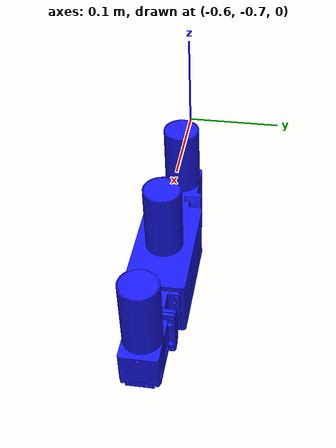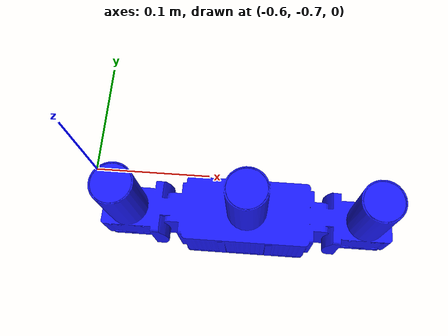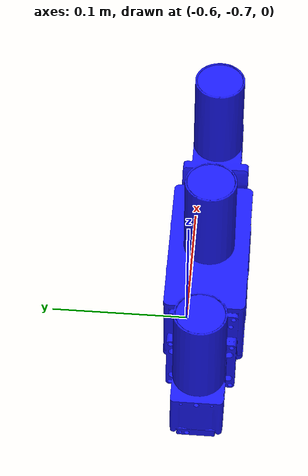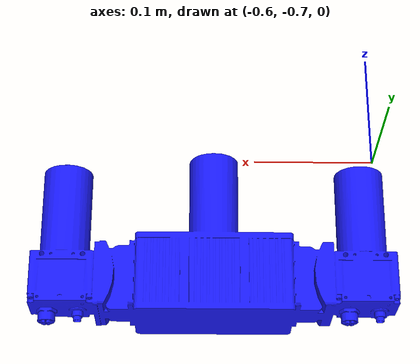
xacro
<?xml version="1.0"?>
<robot name="ensenso_camera" xmlns:xacro="http://www.ros.org/wiki/xacro">
  <xacro:include filename="$(find ensenso_description)/ensenso.xacro" />

  <xacro:property name="camera_name" default="X200_xFA" />
  <xacro:ensenso_X200_xFA_Series name="${camera_name}" />
  <joint name="world_to_${camera_name}" type="fixed">
    <parent link="base_link" />
    <child link="${camera_name}" />
    <origin xyz="0 0 0" rpy="0 0 0" />
  </joint>

  <link name="base_link" />
</robot>
<!-- example usage with:
  roslaunch urdf_tutorial display.launch model:=`rospack find ensenso_description`/ensenso_X200_xFA_Series.xacro gui:=true
-->

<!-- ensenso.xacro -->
<robot name="ensenso_camera" xmlns:xacro="http://www.ros.org/wiki/xacro">

<material name="Ensenso/Blue">
  <color rgba="0.1 0.1 1.0 1.0"/>
</material>
<material name="Ensenso/Black">
  <color rgba="0.0 0.0 0.0 1.0"/>
</material>

<xacro:macro name="ensenso_Sx_Series" params="name margin:=0.03">
    <link name="${name}">
      <visual>
        <origin rpy="0 0 0" xyz="0.00 0.0 0.0"/>
        <geometry>
          <mesh filename="package://ensenso_description/stl_meshes/Sx.stl"/>
        </geometry>
        <material name="Ensenso/Blue"/>
      </visual>
      <collision>
        <material name="Ensenso/Black"/>
        <origin rpy="0 0 0" xyz="0 0.00 0.0219"/>
        <geometry>
          <box size="${margin+0.130} ${margin+0.045} ${margin+0.0438}"/>
        </geometry>
      </collision>
    </link>

    <!-- Left lens -->
    <joint name="${name}_left_lense_joint" type="fixed">
      <parent link="${name}"/>
      <child link="${name}_left_lens_frame"/>
      <origin xyz="-0.045 0.00 0.05" rpy="0 0 0"/>
    </joint>
    <link name="${name}_left_lens_frame"/>
  </xacro:macro>

  <xacro:macro name="ensenso_N3x_Series" params="name margin:=0.03">
    <link name="${name}">
      <visual>
        <origin rpy="0 0 0" xyz="0.00 0.0 0.0"/>
        <geometry>
          <mesh filename="package://ensenso_description/stl_meshes/N3x.stl"/>
        </geometry>
        <material name="Ensenso/Blue"/>
      </visual>
      <collision>
        <origin rpy="0 0 0" xyz="-0.0085 0.00 0.026"/>
        <geometry>
          <box size="${margin+0.192} ${margin+0.050} ${margin+0.052}"/>
        </geometry>
      </collision>
    </link>

    <!-- Left lens -->
    <joint name="${name}_left_lense_joint" type="fixed">
      <parent link="${name}"/>
      <child link="${name}_left_lens_frame"/>
      <origin xyz="-0.05 0.00 0.05" rpy="0 0 0"/>
    </joint>
    <link name="${name}_left_lens_frame"/>
  </xacro:macro>

  <xacro:macro name="ensenso_N4x_Series" params="name margin:=0.03">
    <link name="${name}">
      <visual>
        <origin rpy="0 0 0" xyz="0.00 0.0 0.0"/>
        <geometry>
          <mesh filename="package://ensenso_description/stl_meshes/N4x.stl"/>
        </geometry>
        <material name="Ensenso/Blue"/>
      </visual>
      <collision>
        <origin rpy="0 0 0" xyz="-0.0085 0.00 0.026"/>
        <geometry>
          <box size="${margin+0.192} ${margin+0.050} ${margin+0.052}"/>
        </geometry>
      </collision>
    </link>

    <!-- Left lens -->
    <joint name="${name}_left_lense_joint" type="fixed">
      <parent link="${name}"/>
      <child link="${name}_left_lens_frame"/>
      <origin xyz="-0.05 0.00 0.05" rpy="0 0 0"/>
    </joint>
    <link name="${name}_left_lens_frame"/>
  </xacro:macro>

  <xacro:macro name="ensenso_X200_Series" params="name margin:=0.03">
    <link name="${name}">
      <visual>
        <origin rpy="0 0 0" xyz="0 0 0"/>
        <geometry>
          <mesh filename="package://ensenso_description/stl_meshes/X3x-5CP-200.stl"/>
        </geometry>
        <material name="Ensenso/Blue"/>
      </visual>
      <collision>
        <origin rpy="0.0 0.0 0.0" xyz="0.0 0.0 ${0.033+0.05/2}"/>
        <geometry>
          <box size="${margin+0.24350} ${margin+0.066} ${margin+0.08+0.05}"/>
        </geometry>
      </collision>
    </link>

    <!-- Left lens -->
    <joint name="${name}_left_lens_joint" type="fixed">
      <parent link="${name}"/>
      <child link="${name}_left_lens_frame"/>
      <origin xyz="-0.1067 0.0 0.063" rpy="0 0 0"/>
    </joint>
    <link name="${name}_left_lens_frame"/>
  </xacro:macro>

  <xacro:macro name="ensenso_X200_xFA_Series" params="name margin:=0.03 radius_lens_sensor:=0.02 length_lens_sensor:=0.05">
    <link name="${name}">
      <visual>
        <origin rpy="0 0 0" xyz="0 0 0"/>
        <geometry>
          <mesh filename="package://ensenso_description/stl_meshes/X3x-xFA-200.stl"/>
        </geometry>
        <material name="Ensenso/Blue"/>
      </visual>
      <collision>
        <origin rpy="0.0 0.0 0.0" xyz="0.0 0.0 ${0.033+0.05/2}"/>
        <geometry>
          <box size="${margin+0.2870} ${margin+0.066} ${margin+0.09+0.05}"/>
        </geometry>
      </collision>
    </link>

    <!-- Left lens -->
    <joint name="${name}_left_lens_joint" type="fixed">
      <parent link="${name}"/>
      <child link="${name}_left_lens_frame"/>
      <origin xyz="-0.117 0.0 0.063" rpy="0 0 0"/>
    </joint>
    <link name="${name}_left_lens_frame"/>
  </xacro:macro>

  <xacro:macro name="ensenso_X400_Series" params="name margin:=0.03">
    <link name="${name}">
      <visual>
        <origin rpy="0 0 0" xyz="0 0 0"/>
        <geometry>
          <mesh filename="package://ensenso_description/stl_meshes/X3x-5CP-400.stl"/>
        </geometry>
        <material name="Ensenso/Blue"/>
      </visual>
      <collision>
        <origin rpy="0.0 0.0 0.0" xyz="0.0 0.0 ${0.033+0.05/2}"/>
        <geometry>
          <box size="${margin+0.4515} ${margin+0.066} ${margin+0.08+0.05}"/>
        </geometry>
      </collision>
    </link>

    <!-- Left lens -->
    <joint name="${name}_left_lens_joint" type="fixed">
      <parent link="${name}"/>
      <child link="${name}_left_lens_frame"/>
      <origin xyz="-0.2109 0.0 0.063" rpy="0 0 0"/>
    </joint>
    <link name="${name}_left_lens_frame"/>
  </xacro:macro>

  <xacro:macro name="ensenso_X400_xFA_Series" params="name margin:=0.03">
    <link name="${name}">
      <visual>
        <origin rpy="0 0 0" xyz="0 0 0"/>
        <geometry>
          <mesh filename="package://ensenso_description/stl_meshes/X3x-xFA-400.stl"/>
        </geometry>
        <material name="Ensenso/Blue"/>
      </visual>
      <collision>
        <origin rpy="0.0 0.0 0.0" xyz="0.0 0.0 ${0.033+0.05/2}"/>
        <geometry>
          <box size="${margin+0.4950} ${margin+0.066} ${margin+0.09+0.05}"/>
        </geometry>
      </collision>
    </link>

    <!-- Left lens -->
    <joint name="${name}_left_lens_joint" type="fixed">
      <parent link="${name}"/>
      <child link="${name}_left_lens_frame"/>
      <origin xyz="-0.22125 0 0.063" rpy="0 0 0"/>
    </joint>
    <link name="${name}_left_lens_frame"/>
  </xacro:macro>

</robot>
